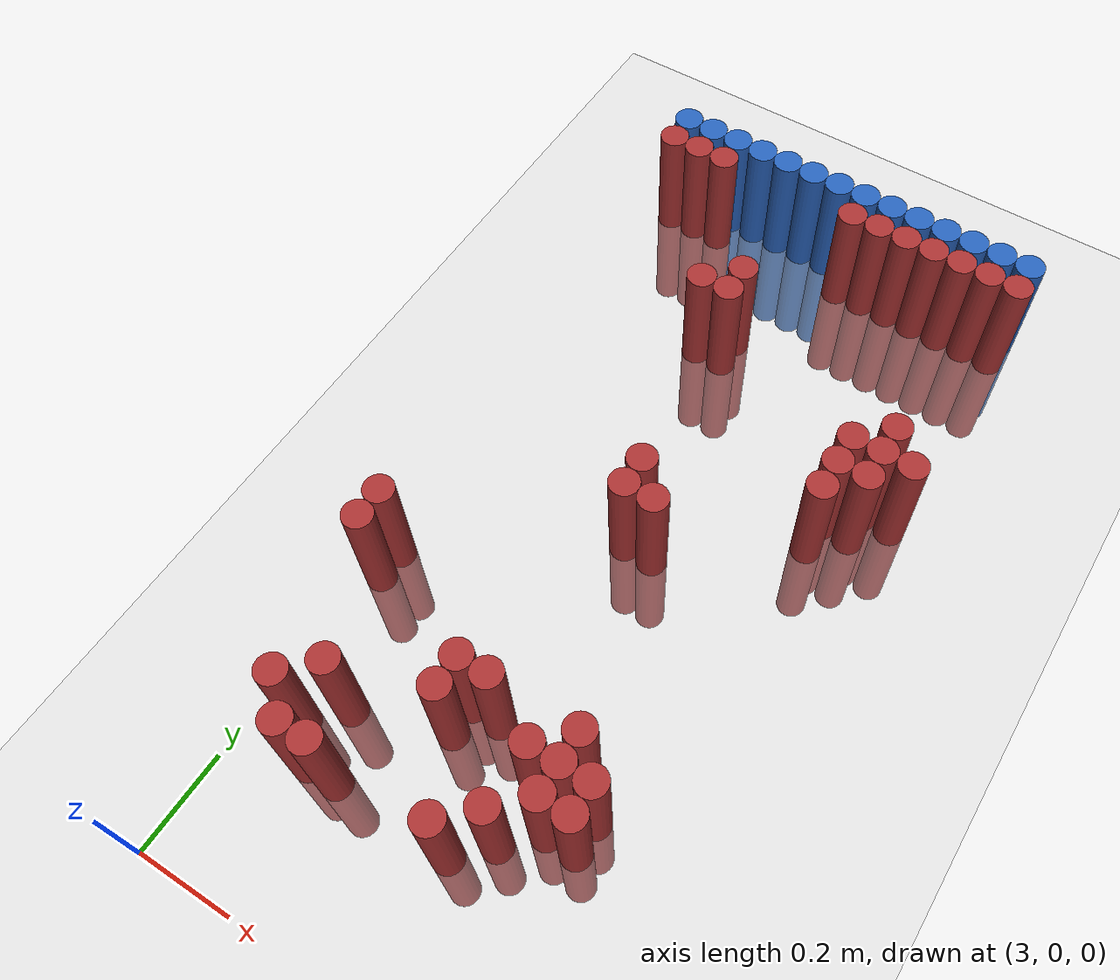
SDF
<sdf version="1.6">
 <world name="default">
  <model name="ground_plane">
   <static>1</static>
   <link name="link">
    <collision name="collision">
     <geometry><plane><normal>0 0 1</normal><size>100 100</size></plane></geometry>
     <surface><friction><ode><mu>100</mu><mu2>50</mu2></ode></friction></surface>
    </collision>
    <visual name="visual">
     <cast_shadows>0</cast_shadows>
     <geometry><plane><normal>0 0 1</normal><size>100 100</size></plane></geometry>
     <material>
      <script><uri>file://media/materials/scripts/gazebo.material</uri><name>Gazebo/Grey</name></script>
     </material>
    </visual>
   </link>
  </model>
  <model name="unit_cylinder_111">
   <static>1</static>
   <pose>3.030000 1.770000 0.000000 0.000000 0.000000 0.000000</pose>
   <link name="link">
    <inertial>
     <mass>1</mass>
     <inertia><ixx>0.145833</ixx><ixy>0</ixy><ixz>0</ixz><iyy>0.145833</iyy><iyz>0</iyz><izz>0.125</izz></inertia>
    </inertial>
    <collision name="collision">
     <geometry><cylinder><radius>0.030000</radius><length>0.5</length></cylinder></geometry>
    </collision>
    <visual name="visual">
     <geometry><cylinder><radius>0.030000</radius><length>0.5</length></cylinder></geometry>
     <material>
      <ambient>0.152000 0.379000 0.720000 1</ambient>
      <diffuse>0.152000 0.379000 0.720000 1</diffuse>
     </material>
     <material>
      <script><name>Gazebo/Grey</name><uri>file://media/materials/scripts/gazebo.material</uri></script>
     </material>
    </visual>
   </link>
  </model>
  <model name="unit_cylinder_112">
   <static>1</static>
   <pose>3.090000 1.770000 0.000000 0.000000 0.000000 0.000000</pose>
   <link name="link">
    <inertial>
     <mass>1</mass>
     <inertia><ixx>0.145833</ixx><ixy>0</ixy><ixz>0</ixz><iyy>0.145833</iyy><iyz>0</iyz><izz>0.125</izz></inertia>
    </inertial>
    <collision name="collision">
     <geometry><cylinder><radius>0.030000</radius><length>0.5</length></cylinder></geometry>
    </collision>
    <visual name="visual">
     <geometry><cylinder><radius>0.030000</radius><length>0.5</length></cylinder></geometry>
     <material>
      <ambient>0.152000 0.379000 0.720000 1</ambient>
      <diffuse>0.152000 0.379000 0.720000 1</diffuse>
     </material>
     <material>
      <script><name>Gazebo/Grey</name><uri>file://media/materials/scripts/gazebo.material</uri></script>
     </material>
    </visual>
   </link>
  </model>
  <model name="unit_cylinder_113">
   <static>1</static>
   <pose>3.150000 1.770000 0.000000 0.000000 0.000000 0.000000</pose>
   <link name="link">
    <inertial>
     <mass>1</mass>
     <inertia><ixx>0.145833</ixx><ixy>0</ixy><ixz>0</ixz><iyy>0.145833</iyy><iyz>0</iyz><izz>0.125</izz></inertia>
    </inertial>
    <collision name="collision">
     <geometry><cylinder><radius>0.030000</radius><length>0.5</length></cylinder></geometry>
    </collision>
    <visual name="visual">
     <geometry><cylinder><radius>0.030000</radius><length>0.5</length></cylinder></geometry>
     <material>
      <ambient>0.152000 0.379000 0.720000 1</ambient>
      <diffuse>0.152000 0.379000 0.720000 1</diffuse>
     </material>
     <material>
      <script><name>Gazebo/Grey</name><uri>file://media/materials/scripts/gazebo.material</uri></script>
     </material>
    </visual>
   </link>
  </model>
  <model name="unit_cylinder_114">
   <static>1</static>
   <pose>3.210000 1.770000 0.000000 0.000000 0.000000 0.000000</pose>
   <link name="link">
    <inertial>
     <mass>1</mass>
     <inertia><ixx>0.145833</ixx><ixy>0</ixy><ixz>0</ixz><iyy>0.145833</iyy><iyz>0</iyz><izz>0.125</izz></inertia>
    </inertial>
    <collision name="collision">
     <geometry><cylinder><radius>0.030000</radius><length>0.5</length></cylinder></geometry>
    </collision>
    <visual name="visual">
     <geometry><cylinder><radius>0.030000</radius><length>0.5</length></cylinder></geometry>
     <material>
      <ambient>0.152000 0.379000 0.720000 1</ambient>
      <diffuse>0.152000 0.379000 0.720000 1</diffuse>
     </material>
     <material>
      <script><name>Gazebo/Grey</name><uri>file://media/materials/scripts/gazebo.material</uri></script>
     </material>
    </visual>
   </link>
  </model>
  <model name="unit_cylinder_115">
   <static>1</static>
   <pose>3.270000 1.770000 0.000000 0.000000 0.000000 0.000000</pose>
   <link name="link">
    <inertial>
     <mass>1</mass>
     <inertia><ixx>0.145833</ixx><ixy>0</ixy><ixz>0</ixz><iyy>0.145833</iyy><iyz>0</iyz><izz>0.125</izz></inertia>
    </inertial>
    <collision name="collision">
     <geometry><cylinder><radius>0.030000</radius><length>0.5</length></cylinder></geometry>
    </collision>
    <visual name="visual">
     <geometry><cylinder><radius>0.030000</radius><length>0.5</length></cylinder></geometry>
     <material>
      <ambient>0.152000 0.379000 0.720000 1</ambient>
      <diffuse>0.152000 0.379000 0.720000 1</diffuse>
     </material>
     <material>
      <script><name>Gazebo/Grey</name><uri>file://media/materials/scripts/gazebo.material</uri></script>
     </material>
    </visual>
   </link>
  </model>
  <model name="unit_cylinder_116">
   <static>1</static>
   <pose>3.330000 1.770000 0.000000 0.000000 0.000000 0.000000</pose>
   <link name="link">
    <inertial>
     <mass>1</mass>
     <inertia><ixx>0.145833</ixx><ixy>0</ixy><ixz>0</ixz><iyy>0.145833</iyy><iyz>0</iyz><izz>0.125</izz></inertia>
    </inertial>
    <collision name="collision">
     <geometry><cylinder><radius>0.030000</radius><length>0.5</length></cylinder></geometry>
    </collision>
    <visual name="visual">
     <geometry><cylinder><radius>0.030000</radius><length>0.5</length></cylinder></geometry>
     <material>
      <ambient>0.152000 0.379000 0.720000 1</ambient>
      <diffuse>0.152000 0.379000 0.720000 1</diffuse>
     </material>
     <material>
      <script><name>Gazebo/Grey</name><uri>file://media/materials/scripts/gazebo.material</uri></script>
     </material>
    </visual>
   </link>
  </model>
  <model name="unit_cylinder_117">
   <static>1</static>
   <pose>3.390000 1.770000 0.000000 0.000000 0.000000 0.000000</pose>
   <link name="link">
    <inertial>
     <mass>1</mass>
     <inertia><ixx>0.145833</ixx><ixy>0</ixy><ixz>0</ixz><iyy>0.145833</iyy><iyz>0</iyz><izz>0.125</izz></inertia>
    </inertial>
    <collision name="collision">
     <geometry><cylinder><radius>0.030000</radius><length>0.5</length></cylinder></geometry>
    </collision>
    <visual name="visual">
     <geometry><cylinder><radius>0.030000</radius><length>0.5</length></cylinder></geometry>
     <material>
      <ambient>0.152000 0.379000 0.720000 1</ambient>
      <diffuse>0.152000 0.379000 0.720000 1</diffuse>
     </material>
     <material>
      <script><name>Gazebo/Grey</name><uri>file://media/materials/scripts/gazebo.material</uri></script>
     </material>
    </visual>
   </link>
  </model>
  <model name="unit_cylinder_118">
   <static>1</static>
   <pose>3.450000 1.770000 0.000000 0.000000 0.000000 0.000000</pose>
   <link name="link">
    <inertial>
     <mass>1</mass>
     <inertia><ixx>0.145833</ixx><ixy>0</ixy><ixz>0</ixz><iyy>0.145833</iyy><iyz>0</iyz><izz>0.125</izz></inertia>
    </inertial>
    <collision name="collision">
     <geometry><cylinder><radius>0.030000</radius><length>0.5</length></cylinder></geometry>
    </collision>
    <visual name="visual">
     <geometry><cylinder><radius>0.030000</radius><length>0.5</length></cylinder></geometry>
     <material>
      <ambient>0.152000 0.379000 0.720000 1</ambient>
      <diffuse>0.152000 0.379000 0.720000 1</diffuse>
     </material>
     <material>
      <script><name>Gazebo/Grey</name><uri>file://media/materials/scripts/gazebo.material</uri></script>
     </material>
    </visual>
   </link>
  </model>
  <model name="unit_cylinder_119">
   <static>1</static>
   <pose>3.510000 1.770000 0.000000 0.000000 0.000000 0.000000</pose>
   <link name="link">
    <inertial>
     <mass>1</mass>
     <inertia><ixx>0.145833</ixx><ixy>0</ixy><ixz>0</ixz><iyy>0.145833</iyy><iyz>0</iyz><izz>0.125</izz></inertia>
    </inertial>
    <collision name="collision">
     <geometry><cylinder><radius>0.030000</radius><length>0.5</length></cylinder></geometry>
    </collision>
    <visual name="visual">
     <geometry><cylinder><radius>0.030000</radius><length>0.5</length></cylinder></geometry>
     <material>
      <ambient>0.152000 0.379000 0.720000 1</ambient>
      <diffuse>0.152000 0.379000 0.720000 1</diffuse>
     </material>
     <material>
      <script><name>Gazebo/Grey</name><uri>file://media/materials/scripts/gazebo.material</uri></script>
     </material>
    </visual>
   </link>
  </model>
  <model name="unit_cylinder_120">
   <static>1</static>
   <pose>3.570000 1.770000 0.000000 0.000000 0.000000 0.000000</pose>
   <link name="link">
    <inertial>
     <mass>1</mass>
     <inertia><ixx>0.145833</ixx><ixy>0</ixy><ixz>0</ixz><iyy>0.145833</iyy><iyz>0</iyz><izz>0.125</izz></inertia>
    </inertial>
    <collision name="collision">
     <geometry><cylinder><radius>0.030000</radius><length>0.5</length></cylinder></geometry>
    </collision>
    <visual name="visual">
     <geometry><cylinder><radius>0.030000</radius><length>0.5</length></cylinder></geometry>
     <material>
      <ambient>0.152000 0.379000 0.720000 1</ambient>
      <diffuse>0.152000 0.379000 0.720000 1</diffuse>
     </material>
     <material>
      <script><name>Gazebo/Grey</name><uri>file://media/materials/scripts/gazebo.material</uri></script>
     </material>
    </visual>
   </link>
  </model>
  <model name="unit_cylinder_121">
   <static>1</static>
   <pose>3.630000 1.770000 0.000000 0.000000 0.000000 0.000000</pose>
   <link name="link">
    <inertial>
     <mass>1</mass>
     <inertia><ixx>0.145833</ixx><ixy>0</ixy><ixz>0</ixz><iyy>0.145833</iyy><iyz>0</iyz><izz>0.125</izz></inertia>
    </inertial>
    <collision name="collision">
     <geometry><cylinder><radius>0.030000</radius><length>0.5</length></cylinder></geometry>
    </collision>
    <visual name="visual">
     <geometry><cylinder><radius>0.030000</radius><length>0.5</length></cylinder></geometry>
     <material>
      <ambient>0.152000 0.379000 0.720000 1</ambient>
      <diffuse>0.152000 0.379000 0.720000 1</diffuse>
     </material>
     <material>
      <script><name>Gazebo/Grey</name><uri>file://media/materials/scripts/gazebo.material</uri></script>
     </material>
    </visual>
   </link>
  </model>
  <model name="unit_cylinder_122">
   <static>1</static>
   <pose>3.690000 1.770000 0.000000 0.000000 0.000000 0.000000</pose>
   <link name="link">
    <inertial>
     <mass>1</mass>
     <inertia><ixx>0.145833</ixx><ixy>0</ixy><ixz>0</ixz><iyy>0.145833</iyy><iyz>0</iyz><izz>0.125</izz></inertia>
    </inertial>
    <collision name="collision">
     <geometry><cylinder><radius>0.030000</radius><length>0.5</length></cylinder></geometry>
    </collision>
    <visual name="visual">
     <geometry><cylinder><radius>0.030000</radius><length>0.5</length></cylinder></geometry>
     <material>
      <ambient>0.152000 0.379000 0.720000 1</ambient>
      <diffuse>0.152000 0.379000 0.720000 1</diffuse>
     </material>
     <material>
      <script><name>Gazebo/Grey</name><uri>file://media/materials/scripts/gazebo.material</uri></script>
     </material>
    </visual>
   </link>
  </model>
  <model name="unit_cylinder_123">
   <static>1</static>
   <pose>3.750000 1.770000 0.000000 0.000000 0.000000 0.000000</pose>
   <link name="link">
    <inertial>
     <mass>1</mass>
     <inertia><ixx>0.145833</ixx><ixy>0</ixy><ixz>0</ixz><iyy>0.145833</iyy><iyz>0</iyz><izz>0.125</izz></inertia>
    </inertial>
    <collision name="collision">
     <geometry><cylinder><radius>0.030000</radius><length>0.5</length></cylinder></geometry>
    </collision>
    <visual name="visual">
     <geometry><cylinder><radius>0.030000</radius><length>0.5</length></cylinder></geometry>
     <material>
      <ambient>0.152000 0.379000 0.720000 1</ambient>
      <diffuse>0.152000 0.379000 0.720000 1</diffuse>
     </material>
     <material>
      <script><name>Gazebo/Grey</name><uri>file://media/materials/scripts/gazebo.material</uri></script>
     </material>
    </visual>
   </link>
  </model>
  <model name="unit_cylinder_124">
   <static>1</static>
   <pose>3.810000 1.770000 0.000000 0.000000 0.000000 0.000000</pose>
   <link name="link">
    <inertial>
     <mass>1</mass>
     <inertia><ixx>0.145833</ixx><ixy>0</ixy><ixz>0</ixz><iyy>0.145833</iyy><iyz>0</iyz><izz>0.125</izz></inertia>
    </inertial>
    <collision name="collision">
     <geometry><cylinder><radius>0.030000</radius><length>0.5</length></cylinder></geometry>
    </collision>
    <visual name="visual">
     <geometry><cylinder><radius>0.030000</radius><length>0.5</length></cylinder></geometry>
     <material>
      <ambient>0.152000 0.379000 0.720000 1</ambient>
      <diffuse>0.152000 0.379000 0.720000 1</diffuse>
     </material>
     <material>
      <script><name>Gazebo/Grey</name><uri>file://media/materials/scripts/gazebo.material</uri></script>
     </material>
    </visual>
   </link>
  </model>
  <model name="unit_cylinder_131">
   <static>1</static>
   <pose>3.030000 1.710000 0.000000 0.000000 0.000000 0.000000</pose>
   <link name="link">
    <inertial>
     <mass>1</mass>
     <inertia><ixx>0.145833</ixx><ixy>0</ixy><ixz>0</ixz><iyy>0.145833</iyy><iyz>0</iyz><izz>0.125</izz></inertia>
    </inertial>
    <collision name="collision">
     <geometry><cylinder><radius>0.030000</radius><length>0.5</length></cylinder></geometry>
    </collision>
    <visual name="visual">
     <geometry><cylinder><radius>0.030000</radius><length>0.5</length></cylinder></geometry>
     <material>
      <ambient>0.648000 0.192000 0.192000 1</ambient>
      <diffuse>0.648000 0.192000 0.192000 1</diffuse>
     </material>
     <material>
      <script><name>Gazebo/Grey</name><uri>file://media/materials/scripts/gazebo.material</uri></script>
     </material>
    </visual>
   </link>
  </model>
  <model name="unit_cylinder_132">
   <static>1</static>
   <pose>3.090000 1.710000 0.000000 0.000000 0.000000 0.000000</pose>
   <link name="link">
    <inertial>
     <mass>1</mass>
     <inertia><ixx>0.145833</ixx><ixy>0</ixy><ixz>0</ixz><iyy>0.145833</iyy><iyz>0</iyz><izz>0.125</izz></inertia>
    </inertial>
    <collision name="collision">
     <geometry><cylinder><radius>0.030000</radius><length>0.5</length></cylinder></geometry>
    </collision>
    <visual name="visual">
     <geometry><cylinder><radius>0.030000</radius><length>0.5</length></cylinder></geometry>
     <material>
      <ambient>0.648000 0.192000 0.192000 1</ambient>
      <diffuse>0.648000 0.192000 0.192000 1</diffuse>
     </material>
     <material>
      <script><name>Gazebo/Grey</name><uri>file://media/materials/scripts/gazebo.material</uri></script>
     </material>
    </visual>
   </link>
  </model>
  <model name="unit_cylinder_133">
   <static>1</static>
   <pose>3.150000 1.710000 0.000000 0.000000 0.000000 0.000000</pose>
   <link name="link">
    <inertial>
     <mass>1</mass>
     <inertia><ixx>0.145833</ixx><ixy>0</ixy><ixz>0</ixz><iyy>0.145833</iyy><iyz>0</iyz><izz>0.125</izz></inertia>
    </inertial>
    <collision name="collision">
     <geometry><cylinder><radius>0.030000</radius><length>0.5</length></cylinder></geometry>
    </collision>
    <visual name="visual">
     <geometry><cylinder><radius>0.030000</radius><length>0.5</length></cylinder></geometry>
     <material>
      <ambient>0.648000 0.192000 0.192000 1</ambient>
      <diffuse>0.648000 0.192000 0.192000 1</diffuse>
     </material>
     <material>
      <script><name>Gazebo/Grey</name><uri>file://media/materials/scripts/gazebo.material</uri></script>
     </material>
    </visual>
   </link>
  </model>
  <model name="unit_cylinder_134">
   <static>1</static>
   <pose>3.450000 1.710000 0.000000 0.000000 0.000000 0.000000</pose>
   <link name="link">
    <inertial>
     <mass>1</mass>
     <inertia><ixx>0.145833</ixx><ixy>0</ixy><ixz>0</ixz><iyy>0.145833</iyy><iyz>0</iyz><izz>0.125</izz></inertia>
    </inertial>
    <collision name="collision">
     <geometry><cylinder><radius>0.030000</radius><length>0.5</length></cylinder></geometry>
    </collision>
    <visual name="visual">
     <geometry><cylinder><radius>0.030000</radius><length>0.5</length></cylinder></geometry>
     <material>
      <ambient>0.648000 0.192000 0.192000 1</ambient>
      <diffuse>0.648000 0.192000 0.192000 1</diffuse>
     </material>
     <material>
      <script><name>Gazebo/Grey</name><uri>file://media/materials/scripts/gazebo.material</uri></script>
     </material>
    </visual>
   </link>
  </model>
  <model name="unit_cylinder_135">
   <static>1</static>
   <pose>3.510000 1.710000 0.000000 0.000000 0.000000 0.000000</pose>
   <link name="link">
    <inertial>
     <mass>1</mass>
     <inertia><ixx>0.145833</ixx><ixy>0</ixy><ixz>0</ixz><iyy>0.145833</iyy><iyz>0</iyz><izz>0.125</izz></inertia>
    </inertial>
    <collision name="collision">
     <geometry><cylinder><radius>0.030000</radius><length>0.5</length></cylinder></geometry>
    </collision>
    <visual name="visual">
     <geometry><cylinder><radius>0.030000</radius><length>0.5</length></cylinder></geometry>
     <material>
      <ambient>0.648000 0.192000 0.192000 1</ambient>
      <diffuse>0.648000 0.192000 0.192000 1</diffuse>
     </material>
     <material>
      <script><name>Gazebo/Grey</name><uri>file://media/materials/scripts/gazebo.material</uri></script>
     </material>
    </visual>
   </link>
  </model>
  <model name="unit_cylinder_136">
   <static>1</static>
   <pose>3.570000 1.710000 0.000000 0.000000 0.000000 0.000000</pose>
   <link name="link">
    <inertial>
     <mass>1</mass>
     <inertia><ixx>0.145833</ixx><ixy>0</ixy><ixz>0</ixz><iyy>0.145833</iyy><iyz>0</iyz><izz>0.125</izz></inertia>
    </inertial>
    <collision name="collision">
     <geometry><cylinder><radius>0.030000</radius><length>0.5</length></cylinder></geometry>
    </collision>
    <visual name="visual">
     <geometry><cylinder><radius>0.030000</radius><length>0.5</length></cylinder></geometry>
     <material>
      <ambient>0.648000 0.192000 0.192000 1</ambient>
      <diffuse>0.648000 0.192000 0.192000 1</diffuse>
     </material>
     <material>
      <script><name>Gazebo/Grey</name><uri>file://media/materials/scripts/gazebo.material</uri></script>
     </material>
    </visual>
   </link>
  </model>
  <model name="unit_cylinder_137">
   <static>1</static>
   <pose>3.630000 1.710000 0.000000 0.000000 0.000000 0.000000</pose>
   <link name="link">
    <inertial>
     <mass>1</mass>
     <inertia><ixx>0.145833</ixx><ixy>0</ixy><ixz>0</ixz><iyy>0.145833</iyy><iyz>0</iyz><izz>0.125</izz></inertia>
    </inertial>
    <collision name="collision">
     <geometry><cylinder><radius>0.030000</radius><length>0.5</length></cylinder></geometry>
    </collision>
    <visual name="visual">
     <geometry><cylinder><radius>0.030000</radius><length>0.5</length></cylinder></geometry>
     <material>
      <ambient>0.648000 0.192000 0.192000 1</ambient>
      <diffuse>0.648000 0.192000 0.192000 1</diffuse>
     </material>
     <material>
      <script><name>Gazebo/Grey</name><uri>file://media/materials/scripts/gazebo.material</uri></script>
     </material>
    </visual>
   </link>
  </model>
  <model name="unit_cylinder_138">
   <static>1</static>
   <pose>3.690000 1.710000 0.000000 0.000000 0.000000 0.000000</pose>
   <link name="link">
    <inertial>
     <mass>1</mass>
     <inertia><ixx>0.145833</ixx><ixy>0</ixy><ixz>0</ixz><iyy>0.145833</iyy><iyz>0</iyz><izz>0.125</izz></inertia>
    </inertial>
    <collision name="collision">
     <geometry><cylinder><radius>0.030000</radius><length>0.5</length></cylinder></geometry>
    </collision>
    <visual name="visual">
     <geometry><cylinder><radius>0.030000</radius><length>0.5</length></cylinder></geometry>
     <material>
      <ambient>0.648000 0.192000 0.192000 1</ambient>
      <diffuse>0.648000 0.192000 0.192000 1</diffuse>
     </material>
     <material>
      <script><name>Gazebo/Grey</name><uri>file://media/materials/scripts/gazebo.material</uri></script>
     </material>
    </visual>
   </link>
  </model>
  <model name="unit_cylinder_139">
   <static>1</static>
   <pose>3.750000 1.710000 0.000000 0.000000 0.000000 0.000000</pose>
   <link name="link">
    <inertial>
     <mass>1</mass>
     <inertia><ixx>0.145833</ixx><ixy>0</ixy><ixz>0</ixz><iyy>0.145833</iyy><iyz>0</iyz><izz>0.125</izz></inertia>
    </inertial>
    <collision name="collision">
     <geometry><cylinder><radius>0.030000</radius><length>0.5</length></cylinder></geometry>
    </collision>
    <visual name="visual">
     <geometry><cylinder><radius>0.030000</radius><length>0.5</length></cylinder></geometry>
     <material>
      <ambient>0.648000 0.192000 0.192000 1</ambient>
      <diffuse>0.648000 0.192000 0.192000 1</diffuse>
     </material>
     <material>
      <script><name>Gazebo/Grey</name><uri>file://media/materials/scripts/gazebo.material</uri></script>
     </material>
    </visual>
   </link>
  </model>
  <model name="unit_cylinder_140">
   <static>1</static>
   <pose>3.810000 1.710000 0.000000 0.000000 0.000000 0.000000</pose>
   <link name="link">
    <inertial>
     <mass>1</mass>
     <inertia><ixx>0.145833</ixx><ixy>0</ixy><ixz>0</ixz><iyy>0.145833</iyy><iyz>0</iyz><izz>0.125</izz></inertia>
    </inertial>
    <collision name="collision">
     <geometry><cylinder><radius>0.030000</radius><length>0.5</length></cylinder></geometry>
    </collision>
    <visual name="visual">
     <geometry><cylinder><radius>0.030000</radius><length>0.5</length></cylinder></geometry>
     <material>
      <ambient>0.648000 0.192000 0.192000 1</ambient>
      <diffuse>0.648000 0.192000 0.192000 1</diffuse>
     </material>
     <material>
      <script><name>Gazebo/Grey</name><uri>file://media/materials/scripts/gazebo.material</uri></script>
     </material>
    </visual>
   </link>
  </model>
  <model name="unit_cylinder_145">
   <static>1</static>
   <pose>3.330000 1.470000 0.000000 0.000000 0.000000 0.000000</pose>
   <link name="link">
    <inertial>
     <mass>1</mass>
     <inertia><ixx>0.145833</ixx><ixy>0</ixy><ixz>0</ixz><iyy>0.145833</iyy><iyz>0</iyz><izz>0.125</izz></inertia>
    </inertial>
    <collision name="collision">
     <geometry><cylinder><radius>0.030000</radius><length>0.5</length></cylinder></geometry>
    </collision>
    <visual name="visual">
     <geometry><cylinder><radius>0.030000</radius><length>0.5</length></cylinder></geometry>
     <material>
      <ambient>0.648000 0.192000 0.192000 1</ambient>
      <diffuse>0.648000 0.192000 0.192000 1</diffuse>
     </material>
     <material>
      <script><name>Gazebo/Grey</name><uri>file://media/materials/scripts/gazebo.material</uri></script>
     </material>
    </visual>
   </link>
  </model>
  <model name="unit_cylinder_148">
   <static>1</static>
   <pose>3.270000 1.410000 0.000000 0.000000 0.000000 0.000000</pose>
   <link name="link">
    <inertial>
     <mass>1</mass>
     <inertia><ixx>0.145833</ixx><ixy>0</ixy><ixz>0</ixz><iyy>0.145833</iyy><iyz>0</iyz><izz>0.125</izz></inertia>
    </inertial>
    <collision name="collision">
     <geometry><cylinder><radius>0.030000</radius><length>0.5</length></cylinder></geometry>
    </collision>
    <visual name="visual">
     <geometry><cylinder><radius>0.030000</radius><length>0.5</length></cylinder></geometry>
     <material>
      <ambient>0.648000 0.192000 0.192000 1</ambient>
      <diffuse>0.648000 0.192000 0.192000 1</diffuse>
     </material>
     <material>
      <script><name>Gazebo/Grey</name><uri>file://media/materials/scripts/gazebo.material</uri></script>
     </material>
    </visual>
   </link>
  </model>
  <model name="unit_cylinder_149">
   <static>1</static>
   <pose>3.330000 1.410000 0.000000 0.000000 0.000000 0.000000</pose>
   <link name="link">
    <inertial>
     <mass>1</mass>
     <inertia><ixx>0.145833</ixx><ixy>0</ixy><ixz>0</ixz><iyy>0.145833</iyy><iyz>0</iyz><izz>0.125</izz></inertia>
    </inertial>
    <collision name="collision">
     <geometry><cylinder><radius>0.030000</radius><length>0.5</length></cylinder></geometry>
    </collision>
    <visual name="visual">
     <geometry><cylinder><radius>0.030000</radius><length>0.5</length></cylinder></geometry>
     <material>
      <ambient>0.648000 0.192000 0.192000 1</ambient>
      <diffuse>0.648000 0.192000 0.192000 1</diffuse>
     </material>
     <material>
      <script><name>Gazebo/Grey</name><uri>file://media/materials/scripts/gazebo.material</uri></script>
     </material>
    </visual>
   </link>
  </model>
  <model name="unit_cylinder_151">
   <static>1</static>
   <pose>3.750000 1.290000 0.000000 0.000000 0.000000 0.000000</pose>
   <link name="link">
    <inertial>
     <mass>1</mass>
     <inertia><ixx>0.145833</ixx><ixy>0</ixy><ixz>0</ixz><iyy>0.145833</iyy><iyz>0</iyz><izz>0.125</izz></inertia>
    </inertial>
    <collision name="collision">
     <geometry><cylinder><radius>0.030000</radius><length>0.5</length></cylinder></geometry>
    </collision>
    <visual name="visual">
     <geometry><cylinder><radius>0.030000</radius><length>0.5</length></cylinder></geometry>
     <material>
      <ambient>0.648000 0.192000 0.192000 1</ambient>
      <diffuse>0.648000 0.192000 0.192000 1</diffuse>
     </material>
     <material>
      <script><name>Gazebo/Grey</name><uri>file://media/materials/scripts/gazebo.material</uri></script>
     </material>
    </visual>
   </link>
  </model>
  <model name="unit_cylinder_155">
   <static>1</static>
   <pose>3.690000 1.230000 0.000000 0.000000 0.000000 0.000000</pose>
   <link name="link">
    <inertial>
     <mass>1</mass>
     <inertia><ixx>0.145833</ixx><ixy>0</ixy><ixz>0</ixz><iyy>0.145833</iyy><iyz>0</iyz><izz>0.125</izz></inertia>
    </inertial>
    <collision name="collision">
     <geometry><cylinder><radius>0.030000</radius><length>0.5</length></cylinder></geometry>
    </collision>
    <visual name="visual">
     <geometry><cylinder><radius>0.030000</radius><length>0.5</length></cylinder></geometry>
     <material>
      <ambient>0.648000 0.192000 0.192000 1</ambient>
      <diffuse>0.648000 0.192000 0.192000 1</diffuse>
     </material>
     <material>
      <script><name>Gazebo/Grey</name><uri>file://media/materials/scripts/gazebo.material</uri></script>
     </material>
    </visual>
   </link>
  </model>
  <model name="unit_cylinder_156">
   <static>1</static>
   <pose>3.750000 1.230000 0.000000 0.000000 0.000000 0.000000</pose>
   <link name="link">
    <inertial>
     <mass>1</mass>
     <inertia><ixx>0.145833</ixx><ixy>0</ixy><ixz>0</ixz><iyy>0.145833</iyy><iyz>0</iyz><izz>0.125</izz></inertia>
    </inertial>
    <collision name="collision">
     <geometry><cylinder><radius>0.030000</radius><length>0.5</length></cylinder></geometry>
    </collision>
    <visual name="visual">
     <geometry><cylinder><radius>0.030000</radius><length>0.5</length></cylinder></geometry>
     <material>
      <ambient>0.648000 0.192000 0.192000 1</ambient>
      <diffuse>0.648000 0.192000 0.192000 1</diffuse>
     </material>
     <material>
      <script><name>Gazebo/Grey</name><uri>file://media/materials/scripts/gazebo.material</uri></script>
     </material>
    </visual>
   </link>
  </model>
  <model name="unit_cylinder_157">
   <static>1</static>
   <pose>3.810000 1.230000 0.000000 0.000000 0.000000 0.000000</pose>
   <link name="link">
    <inertial>
     <mass>1</mass>
     <inertia><ixx>0.145833</ixx><ixy>0</ixy><ixz>0</ixz><iyy>0.145833</iyy><iyz>0</iyz><izz>0.125</izz></inertia>
    </inertial>
    <collision name="collision">
     <geometry><cylinder><radius>0.030000</radius><length>0.5</length></cylinder></geometry>
    </collision>
    <visual name="visual">
     <geometry><cylinder><radius>0.030000</radius><length>0.5</length></cylinder></geometry>
     <material>
      <ambient>0.648000 0.192000 0.192000 1</ambient>
      <diffuse>0.648000 0.192000 0.192000 1</diffuse>
     </material>
     <material>
      <script><name>Gazebo/Grey</name><uri>file://media/materials/scripts/gazebo.material</uri></script>
     </material>
    </visual>
   </link>
  </model>
  <model name="unit_cylinder_160">
   <static>1</static>
   <pose>3.690000 1.170000 0.000000 0.000000 0.000000 0.000000</pose>
   <link name="link">
    <inertial>
     <mass>1</mass>
     <inertia><ixx>0.145833</ixx><ixy>0</ixy><ixz>0</ixz><iyy>0.145833</iyy><iyz>0</iyz><izz>0.125</izz></inertia>
    </inertial>
    <collision name="collision">
     <geometry><cylinder><radius>0.030000</radius><length>0.5</length></cylinder></geometry>
    </collision>
    <visual name="visual">
     <geometry><cylinder><radius>0.030000</radius><length>0.5</length></cylinder></geometry>
     <material>
      <ambient>0.648000 0.192000 0.192000 1</ambient>
      <diffuse>0.648000 0.192000 0.192000 1</diffuse>
     </material>
     <material>
      <script><name>Gazebo/Grey</name><uri>file://media/materials/scripts/gazebo.material</uri></script>
     </material>
    </visual>
   </link>
  </model>
  <model name="unit_cylinder_161">
   <static>1</static>
   <pose>3.750000 1.170000 0.000000 0.000000 0.000000 0.000000</pose>
   <link name="link">
    <inertial>
     <mass>1</mass>
     <inertia><ixx>0.145833</ixx><ixy>0</ixy><ixz>0</ixz><iyy>0.145833</iyy><iyz>0</iyz><izz>0.125</izz></inertia>
    </inertial>
    <collision name="collision">
     <geometry><cylinder><radius>0.030000</radius><length>0.5</length></cylinder></geometry>
    </collision>
    <visual name="visual">
     <geometry><cylinder><radius>0.030000</radius><length>0.5</length></cylinder></geometry>
     <material>
      <ambient>0.648000 0.192000 0.192000 1</ambient>
      <diffuse>0.648000 0.192000 0.192000 1</diffuse>
     </material>
     <material>
      <script><name>Gazebo/Grey</name><uri>file://media/materials/scripts/gazebo.material</uri></script>
     </material>
    </visual>
   </link>
  </model>
  <model name="unit_cylinder_162">
   <static>1</static>
   <pose>3.690000 1.110000 0.000000 0.000000 0.000000 0.000000</pose>
   <link name="link">
    <inertial>
     <mass>1</mass>
     <inertia><ixx>0.145833</ixx><ixy>0</ixy><ixz>0</ixz><iyy>0.145833</iyy><iyz>0</iyz><izz>0.125</izz></inertia>
    </inertial>
    <collision name="collision">
     <geometry><cylinder><radius>0.030000</radius><length>0.5</length></cylinder></geometry>
    </collision>
    <visual name="visual">
     <geometry><cylinder><radius>0.030000</radius><length>0.5</length></cylinder></geometry>
     <material>
      <ambient>0.648000 0.192000 0.192000 1</ambient>
      <diffuse>0.648000 0.192000 0.192000 1</diffuse>
     </material>
     <material>
      <script><name>Gazebo/Grey</name><uri>file://media/materials/scripts/gazebo.material</uri></script>
     </material>
    </visual>
   </link>
  </model>
  <model name="unit_cylinder_163">
   <static>1</static>
   <pose>3.390000 0.990000 0.000000 0.000000 0.000000 0.000000</pose>
   <link name="link">
    <inertial>
     <mass>1</mass>
     <inertia><ixx>0.145833</ixx><ixy>0</ixy><ixz>0</ixz><iyy>0.145833</iyy><iyz>0</iyz><izz>0.125</izz></inertia>
    </inertial>
    <collision name="collision">
     <geometry><cylinder><radius>0.030000</radius><length>0.5</length></cylinder></geometry>
    </collision>
    <visual name="visual">
     <geometry><cylinder><radius>0.030000</radius><length>0.5</length></cylinder></geometry>
     <material>
      <ambient>0.648000 0.192000 0.192000 1</ambient>
      <diffuse>0.648000 0.192000 0.192000 1</diffuse>
     </material>
     <material>
      <script><name>Gazebo/Grey</name><uri>file://media/materials/scripts/gazebo.material</uri></script>
     </material>
    </visual>
   </link>
  </model>
  <model name="unit_cylinder_164">
   <static>1</static>
   <pose>3.390000 0.930000 0.000000 0.000000 0.000000 0.000000</pose>
   <link name="link">
    <inertial>
     <mass>1</mass>
     <inertia><ixx>0.145833</ixx><ixy>0</ixy><ixz>0</ixz><iyy>0.145833</iyy><iyz>0</iyz><izz>0.125</izz></inertia>
    </inertial>
    <collision name="collision">
     <geometry><cylinder><radius>0.030000</radius><length>0.5</length></cylinder></geometry>
    </collision>
    <visual name="visual">
     <geometry><cylinder><radius>0.030000</radius><length>0.5</length></cylinder></geometry>
     <material>
      <ambient>0.648000 0.192000 0.192000 1</ambient>
      <diffuse>0.648000 0.192000 0.192000 1</diffuse>
     </material>
     <material>
      <script><name>Gazebo/Grey</name><uri>file://media/materials/scripts/gazebo.material</uri></script>
     </material>
    </visual>
   </link>
  </model>
  <model name="unit_cylinder_165">
   <static>1</static>
   <pose>3.450000 0.930000 0.000000 0.000000 0.000000 0.000000</pose>
   <link name="link">
    <inertial>
     <mass>1</mass>
     <inertia><ixx>0.145833</ixx><ixy>0</ixy><ixz>0</ixz><iyy>0.145833</iyy><iyz>0</iyz><izz>0.125</izz></inertia>
    </inertial>
    <collision name="collision">
     <geometry><cylinder><radius>0.030000</radius><length>0.5</length></cylinder></geometry>
    </collision>
    <visual name="visual">
     <geometry><cylinder><radius>0.030000</radius><length>0.5</length></cylinder></geometry>
     <material>
      <ambient>0.648000 0.192000 0.192000 1</ambient>
      <diffuse>0.648000 0.192000 0.192000 1</diffuse>
     </material>
     <material>
      <script><name>Gazebo/Grey</name><uri>file://media/materials/scripts/gazebo.material</uri></script>
     </material>
    </visual>
   </link>
  </model>
  <model name="unit_cylinder_177">
   <static>1</static>
   <pose>3.030000 0.690000 0.000000 0.000000 0.000000 0.000000</pose>
   <link name="link">
    <inertial>
     <mass>1</mass>
     <inertia><ixx>0.145833</ixx><ixy>0</ixy><ixz>0</ixz><iyy>0.145833</iyy><iyz>0</iyz><izz>0.125</izz></inertia>
    </inertial>
    <collision name="collision">
     <geometry><cylinder><radius>0.030000</radius><length>0.5</length></cylinder></geometry>
    </collision>
    <visual name="visual">
     <geometry><cylinder><radius>0.030000</radius><length>0.5</length></cylinder></geometry>
     <material>
      <ambient>0.648000 0.192000 0.192000 1</ambient>
      <diffuse>0.648000 0.192000 0.192000 1</diffuse>
     </material>
     <material>
      <script><name>Gazebo/Grey</name><uri>file://media/materials/scripts/gazebo.material</uri></script>
     </material>
    </visual>
   </link>
  </model>
  <model name="unit_cylinder_183">
   <static>1</static>
   <pose>3.030000 0.630000 0.000000 0.000000 0.000000 0.000000</pose>
   <link name="link">
    <inertial>
     <mass>1</mass>
     <inertia><ixx>0.145833</ixx><ixy>0</ixy><ixz>0</ixz><iyy>0.145833</iyy><iyz>0</iyz><izz>0.125</izz></inertia>
    </inertial>
    <collision name="collision">
     <geometry><cylinder><radius>0.030000</radius><length>0.5</length></cylinder></geometry>
    </collision>
    <visual name="visual">
     <geometry><cylinder><radius>0.030000</radius><length>0.5</length></cylinder></geometry>
     <material>
      <ambient>0.648000 0.192000 0.192000 1</ambient>
      <diffuse>0.648000 0.192000 0.192000 1</diffuse>
     </material>
     <material>
      <script><name>Gazebo/Grey</name><uri>file://media/materials/scripts/gazebo.material</uri></script>
     </material>
    </visual>
   </link>
  </model>
  <model name="unit_cylinder_186">
   <static>1</static>
   <pose>3.330000 0.510000 0.000000 0.000000 0.000000 0.000000</pose>
   <link name="link">
    <inertial>
     <mass>1</mass>
     <inertia><ixx>0.145833</ixx><ixy>0</ixy><ixz>0</ixz><iyy>0.145833</iyy><iyz>0</iyz><izz>0.125</izz></inertia>
    </inertial>
    <collision name="collision">
     <geometry><cylinder><radius>0.030000</radius><length>0.5</length></cylinder></geometry>
    </collision>
    <visual name="visual">
     <geometry><cylinder><radius>0.030000</radius><length>0.5</length></cylinder></geometry>
     <material>
      <ambient>0.648000 0.192000 0.192000 1</ambient>
      <diffuse>0.648000 0.192000 0.192000 1</diffuse>
     </material>
     <material>
      <script><name>Gazebo/Grey</name><uri>file://media/materials/scripts/gazebo.material</uri></script>
     </material>
    </visual>
   </link>
  </model>
  <model name="unit_cylinder_187">
   <static>1</static>
   <pose>3.390000 0.510000 0.000000 0.000000 0.000000 0.000000</pose>
   <link name="link">
    <inertial>
     <mass>1</mass>
     <inertia><ixx>0.145833</ixx><ixy>0</ixy><ixz>0</ixz><iyy>0.145833</iyy><iyz>0</iyz><izz>0.125</izz></inertia>
    </inertial>
    <collision name="collision">
     <geometry><cylinder><radius>0.030000</radius><length>0.5</length></cylinder></geometry>
    </collision>
    <visual name="visual">
     <geometry><cylinder><radius>0.030000</radius><length>0.5</length></cylinder></geometry>
     <material>
      <ambient>0.648000 0.192000 0.192000 1</ambient>
      <diffuse>0.648000 0.192000 0.192000 1</diffuse>
     </material>
     <material>
      <script><name>Gazebo/Grey</name><uri>file://media/materials/scripts/gazebo.material</uri></script>
     </material>
    </visual>
   </link>
  </model>
  <model name="unit_cylinder_188">
   <static>1</static>
   <pose>3.570000 0.510000 0.000000 0.000000 0.000000 0.000000</pose>
   <link name="link">
    <inertial>
     <mass>1</mass>
     <inertia><ixx>0.145833</ixx><ixy>0</ixy><ixz>0</ixz><iyy>0.145833</iyy><iyz>0</iyz><izz>0.125</izz></inertia>
    </inertial>
    <collision name="collision">
     <geometry><cylinder><radius>0.030000</radius><length>0.5</length></cylinder></geometry>
    </collision>
    <visual name="visual">
     <geometry><cylinder><radius>0.030000</radius><length>0.5</length></cylinder></geometry>
     <material>
      <ambient>0.648000 0.192000 0.192000 1</ambient>
      <diffuse>0.648000 0.192000 0.192000 1</diffuse>
     </material>
     <material>
      <script><name>Gazebo/Grey</name><uri>file://media/materials/scripts/gazebo.material</uri></script>
     </material>
    </visual>
   </link>
  </model>
  <model name="unit_cylinder_191">
   <static>1</static>
   <pose>3.330000 0.450000 0.000000 0.000000 0.000000 0.000000</pose>
   <link name="link">
    <inertial>
     <mass>1</mass>
     <inertia><ixx>0.145833</ixx><ixy>0</ixy><ixz>0</ixz><iyy>0.145833</iyy><iyz>0</iyz><izz>0.125</izz></inertia>
    </inertial>
    <collision name="collision">
     <geometry><cylinder><radius>0.030000</radius><length>0.5</length></cylinder></geometry>
    </collision>
    <visual name="visual">
     <geometry><cylinder><radius>0.030000</radius><length>0.5</length></cylinder></geometry>
     <material>
      <ambient>0.648000 0.192000 0.192000 1</ambient>
      <diffuse>0.648000 0.192000 0.192000 1</diffuse>
     </material>
     <material>
      <script><name>Gazebo/Grey</name><uri>file://media/materials/scripts/gazebo.material</uri></script>
     </material>
    </visual>
   </link>
  </model>
  <model name="unit_cylinder_192">
   <static>1</static>
   <pose>3.510000 0.450000 0.000000 0.000000 0.000000 0.000000</pose>
   <link name="link">
    <inertial>
     <mass>1</mass>
     <inertia><ixx>0.145833</ixx><ixy>0</ixy><ixz>0</ixz><iyy>0.145833</iyy><iyz>0</iyz><izz>0.125</izz></inertia>
    </inertial>
    <collision name="collision">
     <geometry><cylinder><radius>0.030000</radius><length>0.5</length></cylinder></geometry>
    </collision>
    <visual name="visual">
     <geometry><cylinder><radius>0.030000</radius><length>0.5</length></cylinder></geometry>
     <material>
      <ambient>0.648000 0.192000 0.192000 1</ambient>
      <diffuse>0.648000 0.192000 0.192000 1</diffuse>
     </material>
     <material>
      <script><name>Gazebo/Grey</name><uri>file://media/materials/scripts/gazebo.material</uri></script>
     </material>
    </visual>
   </link>
  </model>
  <model name="unit_cylinder_193">
   <static>1</static>
   <pose>3.570000 0.450000 0.000000 0.000000 0.000000 0.000000</pose>
   <link name="link">
    <inertial>
     <mass>1</mass>
     <inertia><ixx>0.145833</ixx><ixy>0</ixy><ixz>0</ixz><iyy>0.145833</iyy><iyz>0</iyz><izz>0.125</izz></inertia>
    </inertial>
    <collision name="collision">
     <geometry><cylinder><radius>0.030000</radius><length>0.5</length></cylinder></geometry>
    </collision>
    <visual name="visual">
     <geometry><cylinder><radius>0.030000</radius><length>0.5</length></cylinder></geometry>
     <material>
      <ambient>0.648000 0.192000 0.192000 1</ambient>
      <diffuse>0.648000 0.192000 0.192000 1</diffuse>
     </material>
     <material>
      <script><name>Gazebo/Grey</name><uri>file://media/materials/scripts/gazebo.material</uri></script>
     </material>
    </visual>
   </link>
  </model>
  <model name="unit_cylinder_194">
   <static>1</static>
   <pose>3.630000 0.450000 0.000000 0.000000 0.000000 0.000000</pose>
   <link name="link">
    <inertial>
     <mass>1</mass>
     <inertia><ixx>0.145833</ixx><ixy>0</ixy><ixz>0</ixz><iyy>0.145833</iyy><iyz>0</iyz><izz>0.125</izz></inertia>
    </inertial>
    <collision name="collision">
     <geometry><cylinder><radius>0.030000</radius><length>0.5</length></cylinder></geometry>
    </collision>
    <visual name="visual">
     <geometry><cylinder><radius>0.030000</radius><length>0.5</length></cylinder></geometry>
     <material>
      <ambient>0.648000 0.192000 0.192000 1</ambient>
      <diffuse>0.648000 0.192000 0.192000 1</diffuse>
     </material>
     <material>
      <script><name>Gazebo/Grey</name><uri>file://media/materials/scripts/gazebo.material</uri></script>
     </material>
    </visual>
   </link>
  </model>
  <model name="unit_cylinder_199">
   <static>1</static>
   <pose>3.150000 0.390000 0.000000 0.000000 0.000000 0.000000</pose>
   <link name="link">
    <inertial>
     <mass>1</mass>
     <inertia><ixx>0.145833</ixx><ixy>0</ixy><ixz>0</ixz><iyy>0.145833</iyy><iyz>0</iyz><izz>0.125</izz></inertia>
    </inertial>
    <collision name="collision">
     <geometry><cylinder><radius>0.030000</radius><length>0.5</length></cylinder></geometry>
    </collision>
    <visual name="visual">
     <geometry><cylinder><radius>0.030000</radius><length>0.5</length></cylinder></geometry>
     <material>
      <ambient>0.648000 0.192000 0.192000 1</ambient>
      <diffuse>0.648000 0.192000 0.192000 1</diffuse>
     </material>
     <material>
      <script><name>Gazebo/Grey</name><uri>file://media/materials/scripts/gazebo.material</uri></script>
     </material>
    </visual>
   </link>
  </model>
  <model name="unit_cylinder_200">
   <static>1</static>
   <pose>3.570000 0.390000 0.000000 0.000000 0.000000 0.000000</pose>
   <link name="link">
    <inertial>
     <mass>1</mass>
     <inertia><ixx>0.145833</ixx><ixy>0</ixy><ixz>0</ixz><iyy>0.145833</iyy><iyz>0</iyz><izz>0.125</izz></inertia>
    </inertial>
    <collision name="collision">
     <geometry><cylinder><radius>0.030000</radius><length>0.5</length></cylinder></geometry>
    </collision>
    <visual name="visual">
     <geometry><cylinder><radius>0.030000</radius><length>0.5</length></cylinder></geometry>
     <material>
      <ambient>0.648000 0.192000 0.192000 1</ambient>
      <diffuse>0.648000 0.192000 0.192000 1</diffuse>
     </material>
     <material>
      <script><name>Gazebo/Grey</name><uri>file://media/materials/scripts/gazebo.material</uri></script>
     </material>
    </visual>
   </link>
  </model>
  <model name="unit_cylinder_201">
   <static>1</static>
   <pose>3.630000 0.390000 0.000000 0.000000 0.000000 0.000000</pose>
   <link name="link">
    <inertial>
     <mass>1</mass>
     <inertia><ixx>0.145833</ixx><ixy>0</ixy><ixz>0</ixz><iyy>0.145833</iyy><iyz>0</iyz><izz>0.125</izz></inertia>
    </inertial>
    <collision name="collision">
     <geometry><cylinder><radius>0.030000</radius><length>0.5</length></cylinder></geometry>
    </collision>
    <visual name="visual">
     <geometry><cylinder><radius>0.030000</radius><length>0.5</length></cylinder></geometry>
     <material>
      <ambient>0.648000 0.192000 0.192000 1</ambient>
      <diffuse>0.648000 0.192000 0.192000 1</diffuse>
     </material>
     <material>
      <script><name>Gazebo/Grey</name><uri>file://media/materials/scripts/gazebo.material</uri></script>
     </material>
    </visual>
   </link>
  </model>
  <model name="unit_cylinder_204">
   <static>1</static>
   <pose>3.090000 0.330000 0.000000 0.000000 0.000000 0.000000</pose>
   <link name="link">
    <inertial>
     <mass>1</mass>
     <inertia><ixx>0.145833</ixx><ixy>0</ixy><ixz>0</ixz><iyy>0.145833</iyy><iyz>0</iyz><izz>0.125</izz></inertia>
    </inertial>
    <collision name="collision">
     <geometry><cylinder><radius>0.030000</radius><length>0.5</length></cylinder></geometry>
    </collision>
    <visual name="visual">
     <geometry><cylinder><radius>0.030000</radius><length>0.5</length></cylinder></geometry>
     <material>
      <ambient>0.648000 0.192000 0.192000 1</ambient>
      <diffuse>0.648000 0.192000 0.192000 1</diffuse>
     </material>
     <material>
      <script><name>Gazebo/Grey</name><uri>file://media/materials/scripts/gazebo.material</uri></script>
     </material>
    </visual>
   </link>
  </model>
  <model name="unit_cylinder_205">
   <static>1</static>
   <pose>3.510000 0.330000 0.000000 0.000000 0.000000 0.000000</pose>
   <link name="link">
    <inertial>
     <mass>1</mass>
     <inertia><ixx>0.145833</ixx><ixy>0</ixy><ixz>0</ixz><iyy>0.145833</iyy><iyz>0</iyz><izz>0.125</izz></inertia>
    </inertial>
    <collision name="collision">
     <geometry><cylinder><radius>0.030000</radius><length>0.5</length></cylinder></geometry>
    </collision>
    <visual name="visual">
     <geometry><cylinder><radius>0.030000</radius><length>0.5</length></cylinder></geometry>
     <material>
      <ambient>0.648000 0.192000 0.192000 1</ambient>
      <diffuse>0.648000 0.192000 0.192000 1</diffuse>
     </material>
     <material>
      <script><name>Gazebo/Grey</name><uri>file://media/materials/scripts/gazebo.material</uri></script>
     </material>
    </visual>
   </link>
  </model>
  <model name="unit_cylinder_207">
   <static>1</static>
   <pose>3.150000 0.270000 0.000000 0.000000 0.000000 0.000000</pose>
   <link name="link">
    <inertial>
     <mass>1</mass>
     <inertia><ixx>0.145833</ixx><ixy>0</ixy><ixz>0</ixz><iyy>0.145833</iyy><iyz>0</iyz><izz>0.125</izz></inertia>
    </inertial>
    <collision name="collision">
     <geometry><cylinder><radius>0.030000</radius><length>0.5</length></cylinder></geometry>
    </collision>
    <visual name="visual">
     <geometry><cylinder><radius>0.030000</radius><length>0.5</length></cylinder></geometry>
     <material>
      <ambient>0.648000 0.192000 0.192000 1</ambient>
      <diffuse>0.648000 0.192000 0.192000 1</diffuse>
     </material>
     <material>
      <script><name>Gazebo/Grey</name><uri>file://media/materials/scripts/gazebo.material</uri></script>
     </material>
    </visual>
   </link>
  </model>
  <model name="unit_cylinder_208">
   <static>1</static>
   <pose>3.210000 0.270000 0.000000 0.000000 0.000000 0.000000</pose>
   <link name="link">
    <inertial>
     <mass>1</mass>
     <inertia><ixx>0.145833</ixx><ixy>0</ixy><ixz>0</ixz><iyy>0.145833</iyy><iyz>0</iyz><izz>0.125</izz></inertia>
    </inertial>
    <collision name="collision">
     <geometry><cylinder><radius>0.030000</radius><length>0.5</length></cylinder></geometry>
    </collision>
    <visual name="visual">
     <geometry><cylinder><radius>0.030000</radius><length>0.5</length></cylinder></geometry>
     <material>
      <ambient>0.648000 0.192000 0.192000 1</ambient>
      <diffuse>0.648000 0.192000 0.192000 1</diffuse>
     </material>
     <material>
      <script><name>Gazebo/Grey</name><uri>file://media/materials/scripts/gazebo.material</uri></script>
     </material>
    </visual>
   </link>
  </model>
  <model name="unit_cylinder_209">
   <static>1</static>
   <pose>3.450000 0.270000 0.000000 0.000000 0.000000 0.000000</pose>
   <link name="link">
    <inertial>
     <mass>1</mass>
     <inertia><ixx>0.145833</ixx><ixy>0</ixy><ixz>0</ixz><iyy>0.145833</iyy><iyz>0</iyz><izz>0.125</izz></inertia>
    </inertial>
    <collision name="collision">
     <geometry><cylinder><radius>0.030000</radius><length>0.5</length></cylinder></geometry>
    </collision>
    <visual name="visual">
     <geometry><cylinder><radius>0.030000</radius><length>0.5</length></cylinder></geometry>
     <material>
      <ambient>0.648000 0.192000 0.192000 1</ambient>
      <diffuse>0.648000 0.192000 0.192000 1</diffuse>
     </material>
     <material>
      <script><name>Gazebo/Grey</name><uri>file://media/materials/scripts/gazebo.material</uri></script>
     </material>
    </visual>
   </link>
  </model>
 </world>
</sdf>
